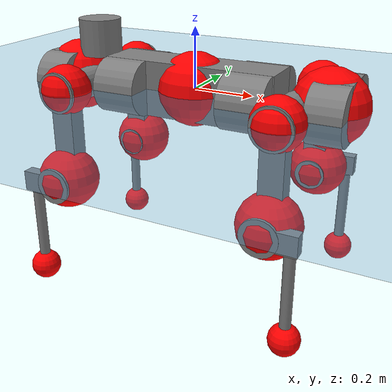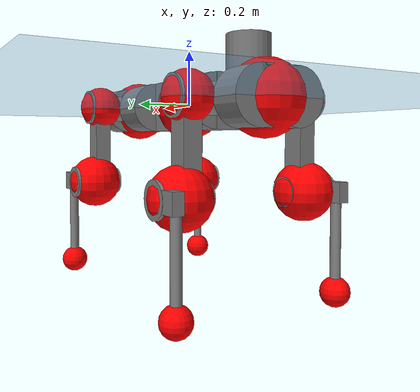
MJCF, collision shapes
<mujoco model="anymal_c">
  <compiler angle="radian" assetdir="assets" balanceinertia="true" inertiafromgeom="false"/>

  <option timestep="0.005" density="1.2" viscosity="2e-05"/>

  <size nkey="1"/>

  <visual>
    <quality shadowsize="8192"/>
    <map shadowclip="0.5"/>
  </visual>

  <default>
    <default class="/">
      <material specular="0" shininess="0.25"/>
      <geom contype="0" conaffinity="0" group="1" solref="-1000 -80"/>
      <site size="0.01 0.005 0.005" group="5"/>
      <general forcelimited="true" forcerange="-80 80" biastype="affine" gainprm="80" biasprm="0 -80 -2"/>
      <default class="anymal_c">
        <joint armature="0.01" damping="0.01" frictionloss="0.1"/>
        <default class="visual">
          <geom type="mesh" group="2"/>
          <default class="visual_zflip"/>
        </default>
        <default class="collision">
          <geom type="cylinder" group="3"/>
          <default class="foot">
            <geom size="0.03 0 0" type="sphere" condim="6" priority="1" friction="0.8 0.02 0.01" solimp="0.015 1 0.03"/>
          </default>
        </default>
      </default>
      <default class="reward_collision_sphere">
        <geom group="5" rgba="1 0 0 1"/>
      </default>
    </default>
  </default>

  <asset>
    <texture type="skybox" colorspace="auto" name="//unnamed_texture_0" builtin="gradient" rgb1="0.95 0.95 0.95" rgb2="0.95 0.95 0.95" width="100" height="600"/>
    <texture type="2d" colorspace="auto" name="texplane" builtin="checker" rgb1="0.345 0.575 0.748" rgb2="0.345 0.575 0.748" markrgb="1 1 1" width="512" height="512"/>
    <texture type="2d" colorspace="linear" name="base" file="base.png"/>
    <texture type="2d" colorspace="linear" name="top_shell" file="top_shell.png"/>
    <texture type="2d" colorspace="linear" name="bottom_shell" file="bottom_shell.png"/>
    <texture type="2d" colorspace="linear" name="remote" file="remote.png"/>
    <texture type="2d" colorspace="linear" name="hatch" file="hatch.png"/>
    <texture type="2d" colorspace="linear" name="handle" file="handle.png"/>
    <texture type="2d" colorspace="linear" name="face" file="face.png"/>
    <texture type="2d" colorspace="linear" name="battery" file="battery.png"/>
    <texture type="2d" colorspace="linear" name="lidar_cage" file="lidar_cage.png"/>
    <texture type="2d" colorspace="linear" name="depth_camera" file="depth_camera.png"/>
    <texture type="2d" colorspace="linear" name="wide_angle_camera" file="wide_angle_camera.png"/>
    <texture type="2d" colorspace="linear" name="lidar" file="lidar.png"/>
    <texture type="2d" colorspace="linear" name="drive" file="drive.png"/>
    <texture type="2d" colorspace="linear" name="hip_l" file="hip_l.png"/>
    <texture type="2d" colorspace="linear" name="shank_l" file="shank_l.png"/>
    <texture type="2d" colorspace="linear" name="foot" file="foot.png"/>
    <texture type="2d" colorspace="linear" name="thigh" file="thigh.png"/>
    <texture type="2d" colorspace="linear" name="shank_r" file="shank_r.png"/>
    <texture type="2d" colorspace="linear" name="hip_r" file="hip_r.png"/>
    <material name="MatPlane" class="/" texture="texplane" texuniform="true" texrepeat="2 2" specular="0.9" shininess="0.5"/>
    <material name="black_plastic" class="/" rgba="0.007 0.007 0.007 1"/>
    <material name="green" class="/" rgba="0.052 0.178 0.033 1"/>
    <material name="red" class="/" rgba="0.178 0.006 0.005 1"/>
    <material name="yellow" class="/" rgba="0.178 0.119 0.006 1"/>
    <material name="lwl" class="/" rgba="0.8 0.8 0.8 1"/>
    <material name="base" class="/" texture="base"/>
    <material name="top_shell" class="/" texture="top_shell"/>
    <material name="bottom_shell" class="/" texture="bottom_shell"/>
    <material name="hip_l" class="/" texture="hip_l"/>
    <material name="thigh" class="/" texture="thigh"/>
    <material name="shank_l" class="/" texture="shank_l"/>
    <material name="foot" class="/" texture="foot"/>
    <material name="hip_r" class="/" texture="hip_r"/>
    <material name="shank" class="/" texture="shank_r"/>
    <material name="hatch" class="/" texture="hatch"/>
    <material name="remote" class="/" texture="remote"/>
    <material name="handle" class="/" texture="handle"/>
    <material name="face" class="/" texture="face"/>
    <material name="depth_camera" class="/" texture="depth_camera"/>
    <material name="wide_angle_camera" class="/" texture="wide_angle_camera"/>
    <material name="battery" class="/" texture="battery"/>
    <material name="lidar_cage" class="/" texture="lidar_cage"/>
    <material name="lidar" class="/" texture="lidar"/>
    <material name="drive" class="/" texture="drive"/>
    <mesh name="base_0" class="/" file="base_0.obj"/>
    <mesh name="base_1" class="/" file="base_1.obj"/>
    <mesh name="base_2" class="/" file="base_2.obj"/>
    <mesh name="base_3" class="/" file="base_3.obj"/>
    <mesh name="base_4" class="/" file="base_4.obj"/>
    <mesh name="base_5" class="/" file="base_5.obj"/>
    <mesh name="top_shell" class="/" file="top_shell.obj"/>
    <mesh name="bottom_shell" class="/" file="bottom_shell.obj"/>
    <mesh name="remote" class="/" file="remote.obj"/>
    <mesh name="handle" class="/" file="handle.obj"/>
    <mesh name="face" class="/" file="face.obj"/>
    <mesh name="wide_angle_camera" class="/" file="wide_angle_camera.obj"/>
    <mesh name="depth_camera" class="/" file="depth_camera.obj"/>
    <mesh name="battery" class="/" file="battery.obj"/>
    <mesh name="lidar_cage" class="/" file="lidar_cage.obj"/>
    <mesh name="lidar" class="/" file="lidar.obj"/>
    <mesh name="drive" class="/" file="drive.obj"/>
    <mesh name="hip_l" class="/" file="hip_l.obj"/>
    <mesh name="thigh" class="/" file="thigh.obj"/>
    <mesh name="shank_l" class="/" file="shank_l.obj"/>
    <mesh name="foot" class="/" file="foot.obj"/>
    <mesh name="hip_r" class="/" file="hip_r.obj"/>
    <mesh name="hatch" class="/" file="hatch.obj"/>
    <mesh name="shank_r" class="/" file="shank_r.obj"/>
  </asset>

  <worldbody>
    <geom name="floor" class="/" size="100 100 0.125" type="plane" group="0" material="MatPlane"/>
    <light name="toplight_shadow" class="/" pos="0 0 5" dir="0.0990148 0.0990148 -0.990148" type="directional" ambient="0.04 0.04 0.04" diffuse="0.55 0.55 0.55" specular="0.12 0.12 0.12"/>
    <light name="toplight_fill" class="/" pos="0 0 5" dir="0.0990148 0.0990148 -0.990148" type="directional" castshadow="false" ambient="0.04 0.04 0.04" diffuse="0.3 0.3 0.3" specular="0.08 0.08 0.08"/>
    <body name="trunk" childclass="anymal_c" pos="0.00028899 -0.00219496 0.000182616" quat="1 -6.61127e-06 -4.551e-05 -6.67977e-06">
      <inertial pos="0.00131956 -0.0025254 0.0533348" quat="0.507306 0.503951 0.498446 0.490128" mass="19.229" diaginertia="0.610617 0.60113 0.275055"/>
      <joint name="//unnamed_joint_0" type="free" armature="0" damping="0" frictionloss="0"/>
      <geom name="//unnamed_geom_1" class="visual" material="green" mesh="base_0"/>
      <geom name="//unnamed_geom_2" class="visual" material="yellow" mesh="base_1"/>
      <geom name="//unnamed_geom_3" class="visual" material="red" mesh="base_2"/>
      <geom name="//unnamed_geom_4" class="visual" material="black_plastic" mesh="base_3"/>
      <geom name="//unnamed_geom_5" class="visual" material="lwl" mesh="base_4"/>
      <geom name="//unnamed_geom_6" class="visual" material="base" mesh="base_5"/>
      <geom name="trunk_1" class="collision" size="0.29437 0.0710549 0.0913564" type="box"/>
      <geom name="trunk_2" class="collision" size="0.0913564 0.0735926" pos="0.216644 0.0696704 0" quat="0.707107 0 0.707107 0"/>
      <geom name="trunk_3" class="collision" size="0.0913564 0.0735926" pos="-0.216644 0.0696704 0" quat="0.707107 0 0.707107 0"/>
      <geom name="trunk_4" class="collision" size="0.0913564 0.0735926" pos="0.216644 -0.0696704 0" quat="0.707107 0 0.707107 0"/>
      <geom name="trunk_5" class="collision" size="0.0913564 0.0735926" pos="-0.216644 -0.0696704 0" quat="0.707107 0 0.707107 0"/>
      <geom name="//unnamed_geom_12" class="visual" material="top_shell" mesh="top_shell"/>
      <geom name="//unnamed_geom_13" class="visual" material="bottom_shell" mesh="bottom_shell"/>
      <geom name="//unnamed_geom_14" class="visual" material="remote" mesh="remote"/>
      <geom name="//unnamed_geom_15" class="visual" material="handle" mesh="handle"/>
      <geom name="//unnamed_geom_16" class="visual" pos="0.412869 0 0" quat="1 0 0 0" material="face" mesh="face"/>
      <geom name="trunk_6" class="collision" size="0.0558289 0.0710549 0.0913564" pos="0.467652 0 0" type="box"/>
      <geom name="//unnamed_geom_18" class="collision" size="0.0913564 0.0558289" pos="0.467652 0.0696704 0" quat="0.707107 0 0.707107 0"/>
      <geom name="//unnamed_geom_19" class="collision" size="0.0913564 0.0558289" pos="0.467652 -0.0696704 0" quat="0.707107 0 0.707107 0"/>
      <geom name="//unnamed_geom_20" class="visual" pos="0.459836 0 -0.0312118" quat="0.965926 0 0.258819 0" material="depth_camera" mesh="depth_camera"/>
      <geom name="//unnamed_geom_21" class="visual" pos="0.510981 0 0.0157762" material="wide_angle_camera" mesh="wide_angle_camera"/>
      <geom name="//unnamed_geom_22" class="visual_zflip" pos="-0.412869 0 0" quat="0 0 0 1" material="face" mesh="face"/>
      <geom name="trunk_7" class="collision" size="0.0558289 0.0710549 0.0913564" pos="-0.467652 0 0" quat="0 0 0 1" type="box"/>
      <geom name="//unnamed_geom_24" class="collision" size="0.0913564 0.0558289" pos="-0.467652 -0.0696704 0" quat="0 -0.707107 0 0.707107"/>
      <geom name="//unnamed_geom_25" class="collision" size="0.0913564 0.0558289" pos="-0.467652 0.0696704 0" quat="0 -0.707107 0 0.707107"/>
      <geom name="//unnamed_geom_26" class="visual" pos="-0.459836 0 -0.0312118" quat="0 -0.258819 0 0.965926" material="depth_camera" mesh="depth_camera"/>
      <geom name="//unnamed_geom_27" class="visual_zflip" pos="-0.510981 0 0.0157762" quat="0 0 0 1" material="wide_angle_camera" mesh="wide_angle_camera"/>
      <geom name="//unnamed_geom_28" class="visual" material="battery" mesh="battery"/>
      <geom name="//unnamed_geom_29" class="visual" pos="0 0.0760923 0.0301753" quat="0.683013 -0.183013 0.183013 0.683013" material="depth_camera" mesh="depth_camera"/>
      <geom name="//unnamed_geom_30" class="visual" pos="0 -0.0760923 0.0301753" quat="0.683013 0.183013 0.183013 -0.683013" material="depth_camera" mesh="depth_camera"/>
      <geom name="//unnamed_geom_31" class="visual" pos="-0.362567 0 0.0774584" quat="1 0 0 0" material="lidar_cage" mesh="lidar_cage"/>
      <geom name="trunk_8" class="collision" size="0.0710549 0.0609042" pos="-0.362567 0 0.14069"/>
      <geom name="//unnamed_geom_33" class="visual" pos="-0.362567 -3.03457e-07 0.149858" quat="0.707107 0 0 -0.707107" material="lidar" mesh="lidar"/>
      <geom name="//unnamed_geom_34" class="visual" pos="0.29872 0.103531 -1.01022e-09" quat="0.258819 0.965926 0 0" material="drive" mesh="drive"/>
      <geom name="//unnamed_geom_35" class="visual" pos="0.29872 -0.103531 1.01022e-09" quat="0.258819 -0.965926 0 0" material="drive" mesh="drive"/>
      <geom name="//unnamed_geom_36" class="visual" pos="-0.29872 0.103531 1.01022e-09" quat="0 0 0.965926 -0.258819" material="drive" mesh="drive"/>
      <geom name="//unnamed_geom_37" class="visual" pos="-0.29872 -0.103531 -1.01022e-09" quat="0 0 -0.965926 -0.258819" material="drive" mesh="drive"/>
      <geom name="//unnamed_geom_38" class="visual" pos="0.115543 0 0.0769314" quat="1 0 0 0" material="hatch" mesh="hatch"/>
      <geom name="//unnamed_geom_39" class="reward_collision_sphere" size="0.121808"/>
      <geom name="//unnamed_geom_40" class="reward_collision_sphere" size="0.121808" pos="0.448229 0 0"/>
      <geom name="//unnamed_geom_41" class="reward_collision_sphere" size="0.121808" pos="-0.448229 0 0"/>
      <site name="imu" pos="0.258185 0.0127408 0.0378255" size="0.0101507"/>
      <camera name="track" pos="0 -1.99058 0" quat="0.707107 0.707107 0 0" mode="trackcom"/>
      <camera name="ego_camera" pos="0.448229 0 -0.0421542" quat="-0.5 -0.5 0.5 0.5"/>
      <body name="LF_HIP" pos="0.300755 0.106609 0.00277403" quat="0.259386 0.965773 -0.00084454 -0.000323758">
        <inertial pos="0.0570001 -0.0147596 -0.0083846" quat="-0.127997 0.709767 -0.135113 0.679405" mass="2.81625" diaginertia="0.00573383 0.00462414 0.0042934"/>
        <joint name="LF_HAA" pos="0 0 0" axis="0.999997 -0.00216407 -0.00140204" range="-0.667936 0.497107" armature="0.00979937" damping="0" frictionloss="0.109525"/>
        <geom name="//unnamed_geom_42" class="visual" pos="0 -5.94267e-05 9.76078e-06" quat="0.258819 -0.965926 0 0" material="hip_l" mesh="hip_l"/>
        <geom name="//unnamed_geom_43" class="visual" pos="0.0596643 -0.0723066 -0.0421794" quat="0.183013 -0.683013 0.683013 0.183013" material="drive" mesh="drive"/>
        <geom name="//unnamed_geom_44" class="collision" size="0.0507535 0.0710549" pos="0.0596643 -0.0119035 -0.00727687" quat="-0.353553 -0.612372 0.612372 -0.353553"/>
        <body name="LF_THIGH" pos="0.0598548 -0.0700211 -0.0437488" quat="0.182511 -0.68254 0.68347 0.183568">
          <inertial pos="0.0327714 0.00118433 -0.259486" quat="0.991822 -0.0124677 -0.087203 0.0923574" mass="3.21061" diaginertia="0.0298867 0.0294325 0.00554035"/>
          <joint name="LF_HFE" pos="0 0 0" axis="0.999939 0.00356678 0.0104326" range="-3.14287 3.19288" armature="0.0113604" damping="0.00167044" frictionloss="0.0988454"/>
          <geom name="//unnamed_geom_45" class="visual" pos="1.53678e-05 2.42161e-08 0" quat="0.707107 0 0 -0.707107" material="thigh" mesh="thigh"/>
          <geom name="//unnamed_geom_46" class="collision" size="0.0659796 0.0406028" pos="0.0398426 0 0" quat="0.5 0.5 -0.5 -0.5"/>
          <geom name="//unnamed_geom_47" class="collision" size="0.0380651 0.0304521 0.143444" pos="0.0298819 0 -0.148925" quat="0.707107 0 0 -0.707107" type="box"/>
          <geom name="//unnamed_geom_48" class="visual" pos="0.0999053 0 -0.300349" quat="1 0 0 0" material="drive" mesh="drive"/>
          <geom name="//unnamed_geom_49" class="collision" size="0.0507535 0.0710549" pos="0.0301808 0 -0.300349" quat="0.707107 0 0.707107 0"/>
          <geom name="//unnamed_geom_50" class="reward_collision_sphere" size="0.0812057" pos="0.0249016 0 0"/>
          <body name="LF_SHANK" pos="0.101133 -0.00288457 -0.300724" quat="1 -0.000401234 -0.000134209 3.85734e-05">
            <inertial pos="0.00691594 -0.0608278 -0.0877069" quat="0.992864 -0.116233 -0.000977351 -0.0266611" mass="0.615153" diaginertia="0.00966186 0.0092902 0.00140003"/>
            <joint name="LF_KFE" pos="0 0 0" axis="1 -0.0006674 -0.000125632" range="-3.19415 3.13396" armature="0.00950543" damping="0.0084737" frictionloss="0.100443"/>
            <geom name="//unnamed_geom_51" class="visual" pos="5.01112e-06 2.67195e-05 0" quat="0.707107 0 0 -0.707107" material="shank_l" mesh="shank_l"/>
            <geom name="LF_kfe_act" class="collision" size="0.0609042 0.0203014" pos="0.0199213 0 0" quat="0.5 0.5 -0.5 -0.5"/>
            <geom name="//unnamed_geom_53" class="collision" size="0.0583655 0.0342586 0.0192863" pos="0.0199213 -0.0572283 0" quat="0.5 0.5 -0.5 -0.5" type="box"/>
            <geom name="//unnamed_geom_54" class="visual" pos="0.0129986 -0.0875273 -0.356171" quat="0.382683 0 0 -0.92388" material="foot" mesh="foot"/>
            <geom name="LF_calf" class="collision" size="0.0177637 0.143381" pos="0.0129986 -0.0875359 -0.178086" quat="0.707107 0 0 -0.707107"/>
            <geom name="LF_foot" class="foot" size="0.0303088" pos="0.0129986 -0.0875359 -0.33246" quat="0.707107 0 0 -0.707107"/>
            <geom name="//unnamed_geom_57" class="reward_collision_sphere" size="0.101507" pos="-0.0498032 0 0"/>
            <geom name="//unnamed_geom_58" class="reward_collision_sphere" size="0.0507535" pos="0.0129986 -0.0875359 -0.33246"/>
            <site name="LF_foot" class="foot" pos="0.0129986 -0.0875359 -0.33246" quat="0.707107 0 0 -0.707107" size="0.0101507"/>
          </body>
        </body>
      </body>
      <body name="RF_HIP" pos="0.299845 -0.104917 0.000702203" quat="0.258805 -0.965929 -0.000218913 0.000301564">
        <inertial pos="0.0572581 0.0144198 -0.00991326" quat="0.137461 0.677933 0.12819 0.710689" mass="2.82388" diaginertia="0.00583174 0.00466762 0.00441637"/>
        <joint name="RF_HAA" pos="0 0 0" axis="0.999952 0.00858398 -0.00463627" range="-0.491466 0.718215" armature="0.0096468" damping="0.00499973" frictionloss="0.0979573"/>
        <geom name="//unnamed_geom_59" class="visual" pos="0 5.94262e-05 9.76076e-06" quat="0.258819 0.965926 0 0" material="hip_r" mesh="hip_r"/>
        <geom name="//unnamed_geom_60" class="visual" pos="0.0596643 0.0723066 -0.0421794" quat="0.183013 0.683013 0.683013 -0.183013" material="drive" mesh="drive"/>
        <geom name="//unnamed_geom_61" class="collision" size="0.0507535 0.0710549" pos="0.0596643 0.0119035 -0.00727687" quat="-0.353553 0.612372 0.612372 0.353553"/>
        <body name="RF_THIGH" pos="0.0625974 0.0746064 -0.0436663" quat="0.18287 0.682862 0.683141 -0.183239">
          <inertial pos="0.0304897 -0.00266816 -0.25922" quat="0.992531 -0.00210402 -0.0788362 0.0930725" mass="3.38488" diaginertia="0.0306801 0.0300622 0.0056368"/>
          <joint name="RF_HFE" pos="0 0 0" axis="0.999999 -0.00116773 -0.00117888" range="-3.19714 3.13714" armature="0.0101276" damping="0.0045889" frictionloss="0.101367"/>
          <geom name="//unnamed_geom_62" class="visual" pos="1.53678e-05 2.42161e-08 0" quat="0.707107 0 0 -0.707107" material="thigh" mesh="thigh"/>
          <geom name="//unnamed_geom_63" class="collision" size="0.0659796 0.0406028" pos="0.0398426 0 0" quat="0.5 0.5 0.5 0.5"/>
          <geom name="//unnamed_geom_64" class="collision" size="0.0380651 0.0304521 0.143444" pos="0.0298819 0 -0.148925" quat="0.707107 0 0 0.707107" type="box"/>
          <geom name="//unnamed_geom_65" class="visual" pos="0.0999053 0 -0.300349" quat="1 0 0 0" material="drive" mesh="drive"/>
          <geom name="//unnamed_geom_66" class="collision" size="0.0507535 0.0710549" pos="0.0301808 0 -0.300349" quat="0.707107 0 0.707107 0"/>
          <geom name="//unnamed_geom_67" class="reward_collision_sphere" size="0.0812057" pos="0.0249016 0 0"/>
          <body name="RF_SHANK" pos="0.0971765 -0.000864372 -0.301493" quat="0.999999 0.000773464 0.000339981 -0.00101293">
            <inertial pos="0.00524206 0.0608698 -0.0830532" quat="0.992524 0.118175 0.00154162 0.0304783" mass="0.618047" diaginertia="0.00984864 0.00904075 0.00144108"/>
            <joint name="RF_KFE" pos="0 0 0" axis="0.999895 -0.00184797 -0.014385" range="-3.15682 3.12959" armature="0.0114586" damping="0.0235432" frictionloss="0.0886698"/>
            <geom name="//unnamed_geom_68" class="visual" pos="5.01109e-06 -2.67195e-05 0" quat="0.707107 0 0 0.707107" material="shank" mesh="shank_r"/>
            <geom name="RF_kfe_act" class="collision" size="0.0609042 0.0203014" pos="0.0199213 0 0" quat="0.5 0.5 0.5 0.5"/>
            <geom name="//unnamed_geom_70" class="collision" size="0.0583655 0.0342586 0.0192863" pos="0.0199213 0.0572283 0" quat="0.5 0.5 0.5 0.5" type="box"/>
            <geom name="//unnamed_geom_71" class="visual" pos="0.0129986 0.0875273 -0.356171" quat="0.382683 0 0 0.92388" material="foot" mesh="foot"/>
            <geom name="RF_calf" class="collision" size="0.0177637 0.143381" pos="0.0129986 0.0875359 -0.178086" quat="0.707107 0 0 0.707107"/>
            <geom name="RF_foot" class="foot" size="0.0277698" pos="0.0129986 0.0875359 -0.33246" quat="0.707107 0 0 0.707107"/>
            <geom name="//unnamed_geom_74" class="reward_collision_sphere" size="0.101507" pos="-0.0498032 0 0"/>
            <geom name="//unnamed_geom_75" class="reward_collision_sphere" size="0.0507535" pos="0.0129986 0.0875359 -0.33246"/>
            <site name="RF_foot" class="foot" pos="0.0129986 0.0875359 -0.33246" quat="0.707107 0 0 0.707107" size="0.0101507"/>
          </body>
        </body>
      </body>
      <body name="LH_HIP" pos="-0.299316 0.102919 -0.000808319" quat="-0.000179636 -0.000122532 0.96591 -0.258879">
        <inertial pos="0.0563081 0.012585 -0.00812185" quat="0.135833 0.676962 0.132254 0.711183" mass="2.86428" diaginertia="0.0057289 0.00479432 0.00428302"/>
        <joint name="LH_HAA" pos="0 0 0" axis="0.99998 0.00301511 0.00550014" range="-0.5134 0.729718" armature="0.0103395" damping="0.0125002" frictionloss="0.096744"/>
        <geom name="//unnamed_geom_76" class="visual" pos="0 5.94262e-05 9.76076e-06" quat="-0.258819 -0.965926 0 0" material="hip_r" mesh="hip_r"/>
        <geom name="//unnamed_geom_77" class="visual" pos="0.0596643 0.0723066 -0.0421794" quat="0.183013 0.683013 0.683013 -0.183013" material="drive" mesh="drive"/>
        <geom name="//unnamed_geom_78" class="collision" size="0.0507535 0.0710549" pos="0.0596643 0.0119035 -0.00727687" quat="-0.353553 0.612372 0.612372 0.353553"/>
        <body name="LH_THIGH" pos="0.0573504 0.0724557 -0.0461068" quat="0.182795 0.682836 0.683272 -0.182921">
          <inertial pos="0.0303999 0.000167264 -0.261445" quat="0.992388 -0.00440484 -0.0854139 0.0886107" mass="3.29211" diaginertia="0.0298353 0.0289093 0.00538844"/>
          <joint name="LH_HFE" pos="0 0 0" axis="0.999997 -0.00211775 0.00099297" range="-3.18767 3.16417" armature="0.0103555" damping="0" frictionloss="0.100996"/>
          <geom name="//unnamed_geom_79" class="visual" pos="1.53678e-05 2.42161e-08 0" quat="0.707107 0 0 -0.707107" material="thigh" mesh="thigh"/>
          <geom name="//unnamed_geom_80" class="collision" size="0.0659796 0.0406028" pos="0.0398426 0 0" quat="0.5 0.5 -0.5 -0.5"/>
          <geom name="//unnamed_geom_81" class="collision" size="0.0380651 0.0304521 0.143444" pos="0.0298819 0 -0.148925" quat="0.707107 0 0 -0.707107" type="box"/>
          <geom name="//unnamed_geom_82" class="visual" pos="0.0999053 0 -0.300349" quat="1 0 0 0" material="drive" mesh="drive"/>
          <geom name="//unnamed_geom_83" class="collision" size="0.0507535 0.0710549" pos="0.0301808 0 -0.300349" quat="0.707107 0 0.707107 0"/>
          <geom name="//unnamed_geom_84" class="reward_collision_sphere" size="0.0812057" pos="0.0249016 0 0"/>
          <body name="LH_SHANK" pos="0.0985428 -0.0025455 -0.30151" quat="1 0.000362695 0.000167611 -1.49056e-05">
            <inertial pos="0.00526109 0.0607413 -0.0842014" quat="0.993218 0.113278 -0.000978595 0.0261719" mass="0.633404" diaginertia="0.0104301 0.00908777 0.0014793"/>
            <joint name="LH_KFE" pos="0 0 0" axis="0.999893 0.00711838 -0.0127698" range="-3.09122 3.09776" armature="0.0104138" damping="0.00655492" frictionloss="0.101081"/>
            <geom name="//unnamed_geom_85" class="visual" pos="5.01109e-06 -2.67195e-05 0" quat="-0.707107 0 0 -0.707107" material="shank" mesh="shank_r"/>
            <geom name="LH_kfe_act" class="collision" size="0.0609042 0.0203014" pos="0.0199213 0 0" quat="0.5 0.5 -0.5 -0.5"/>
            <geom name="//unnamed_geom_87" class="collision" size="0.0583655 0.0342586 0.0192863" pos="0.0199213 0.0572283 0" quat="0.5 0.5 -0.5 -0.5" type="box"/>
            <geom name="//unnamed_geom_88" class="visual" pos="0.0129986 0.0875273 -0.356171" quat="-0.382683 0 0 -0.92388" material="foot" mesh="foot"/>
            <geom name="LH_calf" class="collision" size="0.0177637 0.143381" pos="0.0129986 0.0875359 -0.178086" quat="0.707107 0 0 -0.707107"/>
            <geom name="LH_foot" class="foot" size="0.0315099" pos="0.0129986 0.0875359 -0.33246" quat="0.707107 0 0 -0.707107"/>
            <geom name="//unnamed_geom_91" class="reward_collision_sphere" size="0.101507" pos="-0.0498032 0 0"/>
            <geom name="//unnamed_geom_92" class="reward_collision_sphere" size="0.0507535" pos="0.0129986 0.0875359 -0.33246"/>
            <site name="LH_foot" class="foot" pos="0.0129986 0.0875359 -0.33246" quat="0.707107 0 0 -0.707107" size="0.0101507"/>
          </body>
        </body>
      </body>
      <body name="RH_HIP" pos="-0.299767 -0.101457 0.000421652" quat="0.000600087 0.000606873 -0.966112 -0.258123">
        <inertial pos="0.0553983 -0.0128207 -0.0105111" quat="-0.1322 0.710495 -0.132206 0.678412" mass="2.96214" diaginertia="0.0059602 0.00482597 0.00447218"/>
        <joint name="RH_HAA" pos="0 0 0" axis="0.99993 -0.00902738 -0.00767615" range="-0.713985 0.438807" armature="0.0101475" damping="0.0146479" frictionloss="0.101289"/>
        <geom name="//unnamed_geom_93" class="visual" pos="0 -5.94267e-05 9.76078e-06" quat="-0.258819 0.965926 0 0" material="hip_l" mesh="hip_l"/>
        <geom name="//unnamed_geom_94" class="visual" pos="0.0596643 -0.0723066 -0.0421794" quat="-0.183013 0.683013 -0.683013 -0.183013" material="drive" mesh="drive"/>
        <geom name="//unnamed_geom_95" class="collision" size="0.0507535 0.0710549" pos="0.0596643 -0.0119035 -0.00727687" quat="0.353553 0.612372 -0.612372 0.353553"/>
        <body name="RH_THIGH" pos="0.0601936 -0.0701875 -0.0436531" quat="-0.182733 0.682686 -0.683048 -0.184376">
          <inertial pos="0.0308072 -0.00270244 -0.25753" quat="0.992986 -0.00435159 -0.0780887 0.0886637" mass="3.18909" diaginertia="0.0293389 0.0289728 0.00536174"/>
          <joint name="RH_HFE" pos="0 0 0" axis="0.999918 0.00706723 0.0106434" range="-3.15897 3.16509" armature="0.00984174" damping="0.0115809" frictionloss="0.0971981"/>
          <geom name="//unnamed_geom_96" class="visual" pos="1.53678e-05 2.42161e-08 0" quat="0.707107 0 0 -0.707107" material="thigh" mesh="thigh"/>
          <geom name="//unnamed_geom_97" class="collision" size="0.0659796 0.0406028" pos="0.0398426 0 0" quat="0.5 0.5 0.5 0.5"/>
          <geom name="//unnamed_geom_98" class="collision" size="0.0380651 0.0304521 0.143444" pos="0.0298819 0 -0.148925" quat="0.707107 0 0 0.707107" type="box"/>
          <geom name="//unnamed_geom_99" class="visual" pos="0.0999053 0 -0.300349" quat="1 0 0 0" material="drive" mesh="drive"/>
          <geom name="//unnamed_geom_100" class="collision" size="0.0507535 0.0710549" pos="0.0301808 0 -0.300349" quat="0.707107 0 0.707107 0"/>
          <geom name="//unnamed_geom_101" class="reward_collision_sphere" size="0.0812057" pos="0.0249016 0 0"/>
          <body name="RH_SHANK" pos="0.0971136 -0.000998355 -0.301312" quat="1 -1.82601e-05 -1.07146e-06 1.03409e-05">
            <inertial pos="0.00808253 -0.0610031 -0.0840758" quat="0.992708 -0.117703 -0.00255778 -0.025893" mass="0.61093" diaginertia="0.0102851 0.00912023 0.00143495"/>
            <joint name="RH_KFE" pos="0 0 0" axis="0.999961 -0.00350954 0.00811353" range="-3.17286 3.18932" armature="0.00879876" damping="0.00954695" frictionloss="0.100665"/>
            <geom name="//unnamed_geom_102" class="visual" pos="5.01112e-06 2.67195e-05 0" quat="0.707107 0 0 -0.707107" material="shank_l" mesh="shank_l"/>
            <geom name="RH_kfe_act" class="collision" size="0.0609042 0.0203014" pos="0.0199213 0 0" quat="0.5 0.5 0.5 0.5"/>
            <geom name="//unnamed_geom_104" class="collision" size="0.0583655 0.0342586 0.0192863" pos="0.0199213 -0.0572283 0" quat="0.5 0.5 0.5 0.5" type="box"/>
            <geom name="//unnamed_geom_105" class="visual" pos="0.0129986 -0.0875273 -0.356171" quat="0.382683 0 0 -0.92388" material="foot" mesh="foot"/>
            <geom name="RH_calf" class="collision" size="0.0177637 0.143381" pos="0.0129986 -0.0875359 -0.178086" quat="0.707107 0 0 0.707107"/>
            <geom name="RH_foot" class="foot" size="0.029264" pos="0.0129986 -0.0875359 -0.33246" quat="0.707107 0 0 0.707107"/>
            <geom name="//unnamed_geom_108" class="reward_collision_sphere" size="0.101507" pos="-0.0498032 0 0"/>
            <geom name="//unnamed_geom_109" class="reward_collision_sphere" size="0.0507535" pos="0.0129986 -0.0875359 -0.33246"/>
            <site name="RH_foot" class="foot" pos="0.0129986 -0.0875359 -0.33246" quat="0.707107 0 0 0.707107" size="0.0101507"/>
          </body>
        </body>
      </body>
    </body>
  </worldbody>

  <contact>
    <pair class="/" geom1="floor" geom2="LF_foot" name="//unnamed_contact_0"/>
    <pair class="/" geom1="floor" geom2="RF_foot" name="//unnamed_contact_1"/>
    <pair class="/" geom1="floor" geom2="LH_foot" name="//unnamed_contact_2"/>
    <pair class="/" geom1="floor" geom2="RH_foot" name="//unnamed_contact_3"/>
  </contact>

  <actuator>
    <general name="LF_HAA" class="/" joint="LF_HAA" forcerange="-89.3428 89.3428" gainprm="86.5444" biasprm="0 -86.5444 -2.06042"/>
    <general name="LF_HFE" class="/" joint="LF_HFE" forcerange="-77.3209 77.3209" gainprm="86.5444" biasprm="0 -86.5444 -2.06042"/>
    <general name="LF_KFE" class="/" joint="LF_KFE" forcerange="-84.9212 84.9212" gainprm="86.5444" biasprm="0 -86.5444 -2.06042"/>
    <general name="RF_HAA" class="/" joint="RF_HAA" forcerange="-90.039 90.039" gainprm="86.5444" biasprm="0 -86.5444 -2.06042"/>
    <general name="RF_HFE" class="/" joint="RF_HFE" forcerange="-90.9589 90.9589" gainprm="86.5444" biasprm="0 -86.5444 -2.06042"/>
    <general name="RF_KFE" class="/" joint="RF_KFE" forcerange="-86.7874 86.7874" gainprm="86.5444" biasprm="0 -86.5444 -2.06042"/>
    <general name="LH_HAA" class="/" joint="LH_HAA" forcerange="-83.8183 83.8183" gainprm="86.5444" biasprm="0 -86.5444 -2.06042"/>
    <general name="LH_HFE" class="/" joint="LH_HFE" forcerange="-78.3185 78.3185" gainprm="86.5444" biasprm="0 -86.5444 -2.06042"/>
    <general name="LH_KFE" class="/" joint="LH_KFE" forcerange="-80.9598 80.9598" gainprm="86.5444" biasprm="0 -86.5444 -2.06042"/>
    <general name="RH_HAA" class="/" joint="RH_HAA" forcerange="-73.3038 73.3038" gainprm="86.5444" biasprm="0 -86.5444 -2.06042"/>
    <general name="RH_HFE" class="/" joint="RH_HFE" forcerange="-82.4994 82.4994" gainprm="86.5444" biasprm="0 -86.5444 -2.06042"/>
    <general name="RH_KFE" class="/" joint="RH_KFE" forcerange="-80.9835 80.9835" gainprm="86.5444" biasprm="0 -86.5444 -2.06042"/>
  </actuator>

  <sensor>
    <gyro site="imu" name="imu_angular_velocity"/>
    <velocimeter site="imu" name="imu_linear_velocity"/>
    <framelinvel objtype="site" objname="LF_foot" name="LF_foot_global_linear_velocity"/>
    <framelinvel objtype="site" objname="RF_foot" name="RF_foot_global_linear_velocity"/>
    <framelinvel objtype="site" objname="LH_foot" name="LH_foot_global_linear_velocity"/>
    <framelinvel objtype="site" objname="RH_foot" name="RH_foot_global_linear_velocity"/>
  </sensor>

  <keyframe>
    <key name="home" qpos="0 0 0.55 1 0 0 0 0 0.4 -0.8 0 -0.4 0.8 0 -0.4 0.8 0 0.4 -0.8"/>
  </keyframe>
</mujoco>
